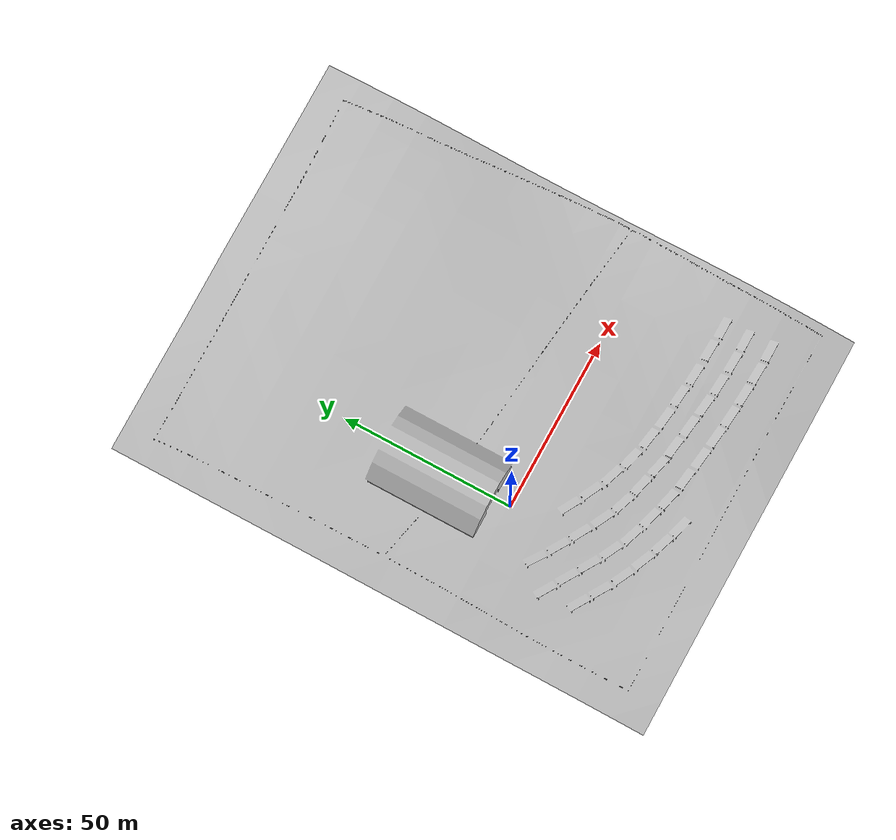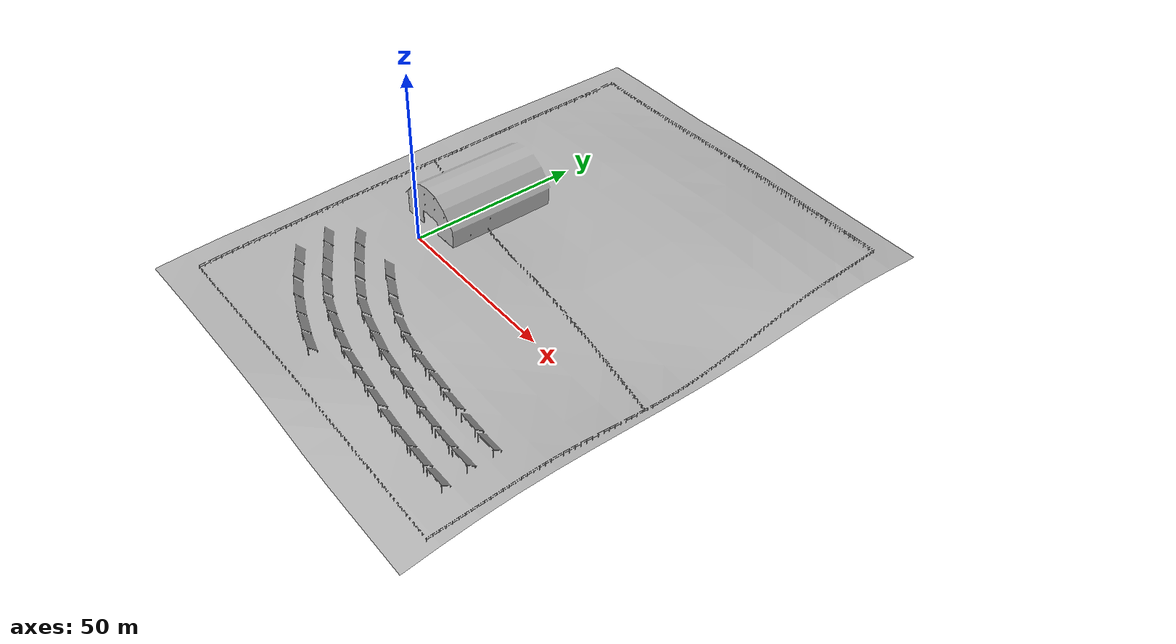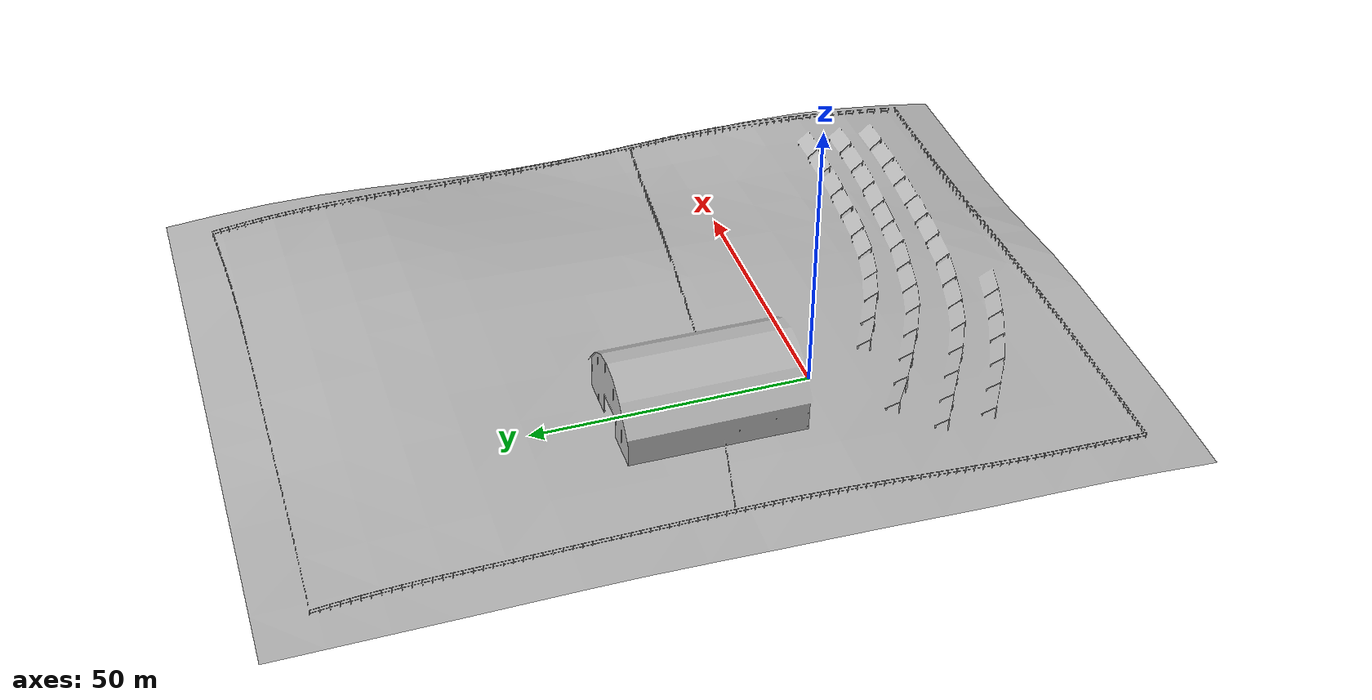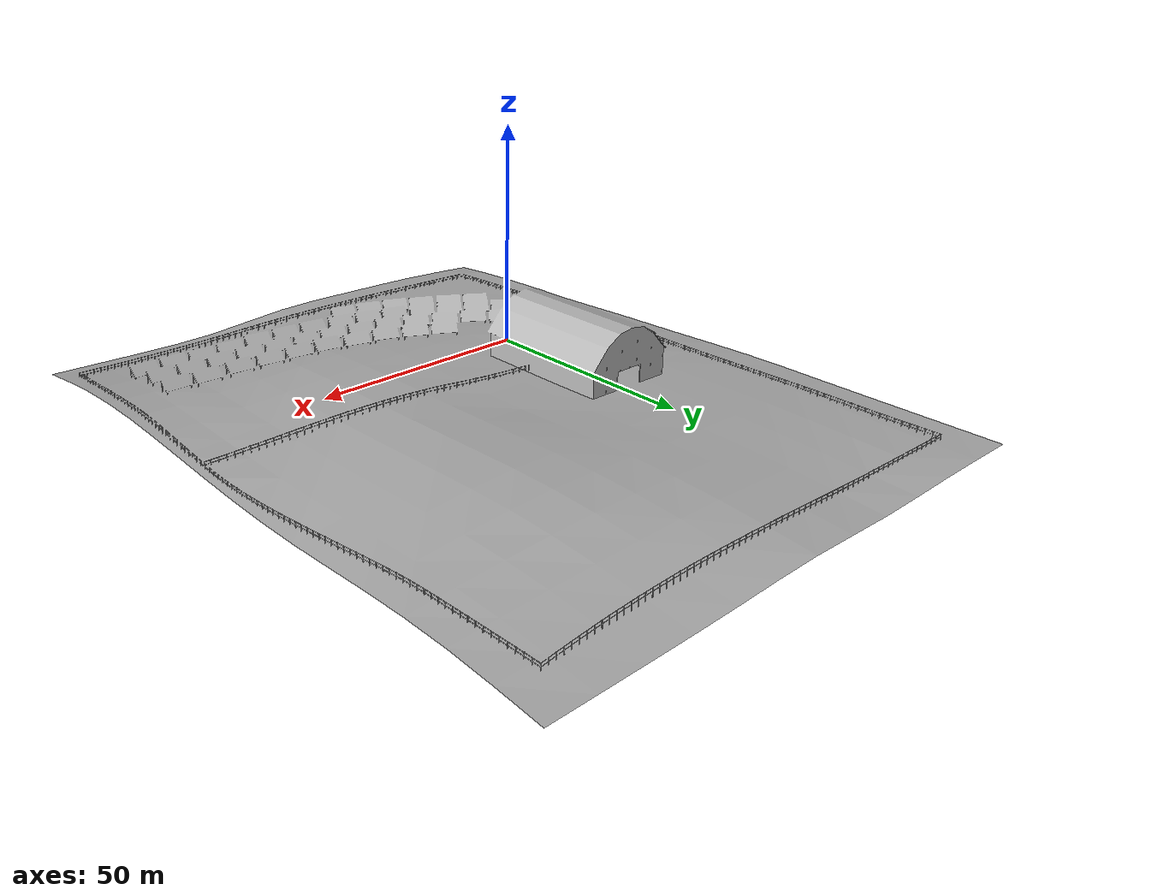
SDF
<sdf version="1.9">
 <world name="default">
  <light name="sun" type="directional">
   <pose>0 0 10 0 -0 0</pose>
   <diffuse>1 1 1 1</diffuse>
   <specular>0.2 0.2 0.2 1</specular>
   <attenuation>
    <range>1000</range>
    <constant>0.9</constant>
    <linear>0.01</linear>
    <quadratic>0.001</quadratic>
   </attenuation>
   <direction>-0.5 -0.5 -1</direction>
  </light>
  <physics name="default_physics" default="0" type="ode">
   <max_step_size>0.004</max_step_size>
   <real_time_factor>1</real_time_factor>
  </physics>
  <plugin filename="gz-sim-physics-system" name="gz::sim::systems::Physics"/>
  <plugin filename="gz-sim-user-commands-system" name="gz::sim::systems::UserCommands"/>
  <plugin filename="gz-sim-scene-broadcaster-system" name="gz::sim::systems::SceneBroadcaster"/>
  <scene><ambient>1 1 1 1</ambient><background>1 1 1 1</background><shadows>1</shadows></scene>
  <spherical_coordinates>
   <surface_model>EARTH_WGS84</surface_model>
   <latitude_deg>49.9</latitude_deg>
   <longitude_deg>8.9</longitude_deg>
   <elevation>0</elevation>
   <heading_deg>0</heading_deg>
  </spherical_coordinates>
  <gravity>0 0 -9.8</gravity>
  <model name="agriculture_geom">
   <link name="agriculture_world_link">
    <inertial>
     <mass>1</mass>
     <inertia><ixx>1</ixx><ixy>0</ixy><ixz>0</ixz><iyy>1</iyy><iyz>0</iyz><izz>1</izz></inertia>
    </inertial>
    <collision name="agriculture_world_link_collision">
     <geometry>
      <mesh>
       <scale>1 1 1</scale>
       <uri>package://rover_description/models/cpr_agriculture/meshes/agriculture_world.dae</uri>
      </mesh>
     </geometry>
    </collision>
    <visual name="agriculture_world_link_visual">
     <geometry>
      <mesh>
       <scale>1 1 1</scale>
       <uri>package://rover_description/models/cpr_agriculture/meshes/agriculture_world.dae</uri>
      </mesh>
     </geometry>
    </visual>
   </link>
   <static>1</static>
  </model>
 </world>
</sdf>
